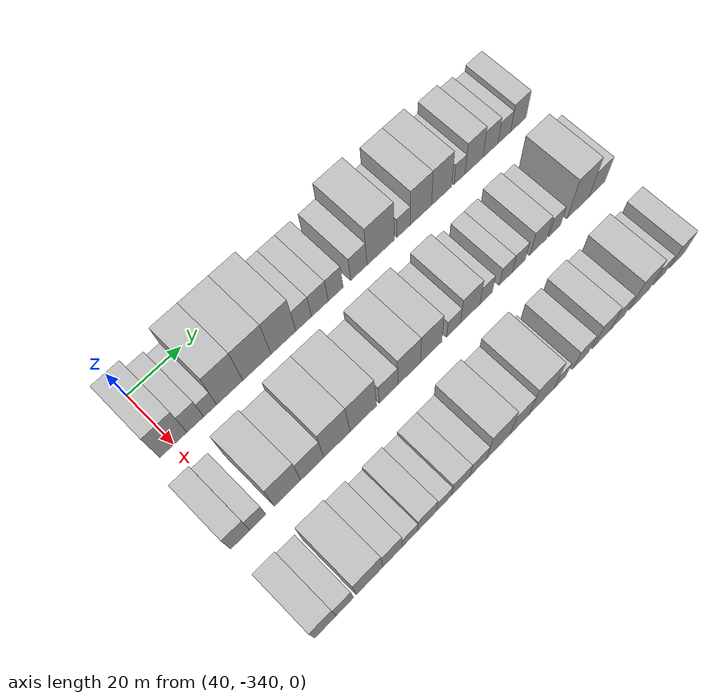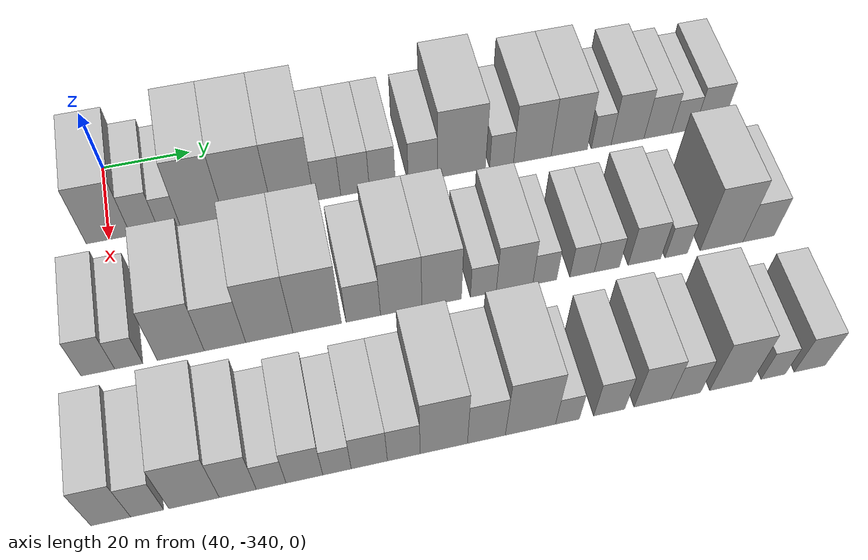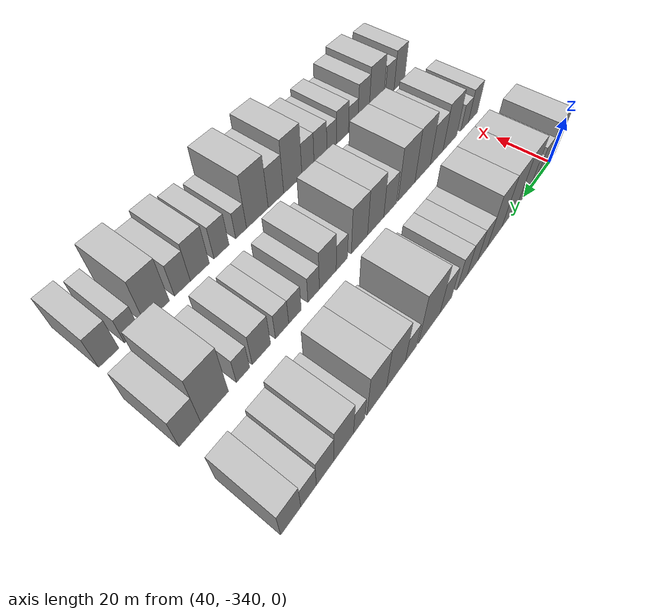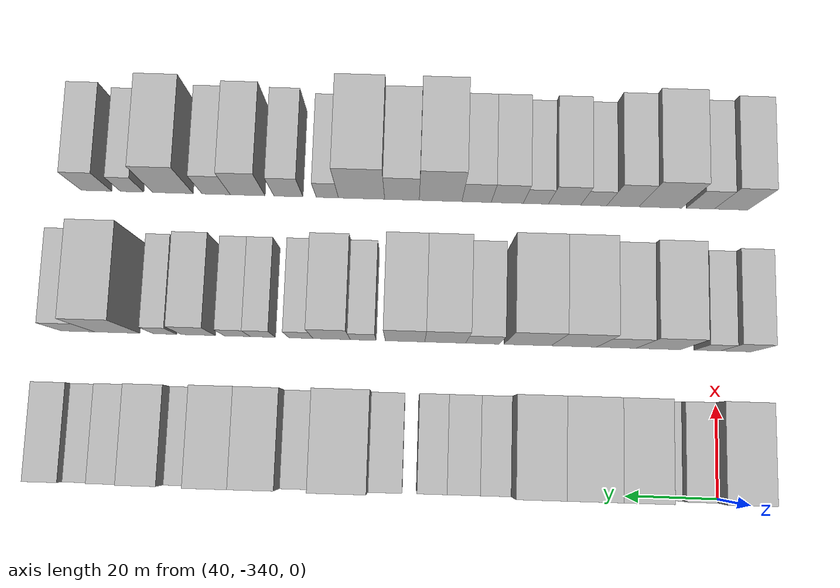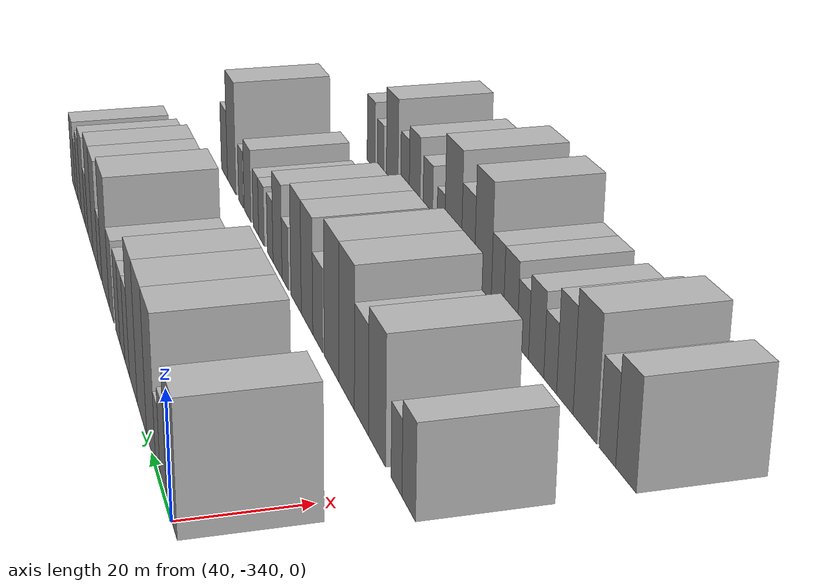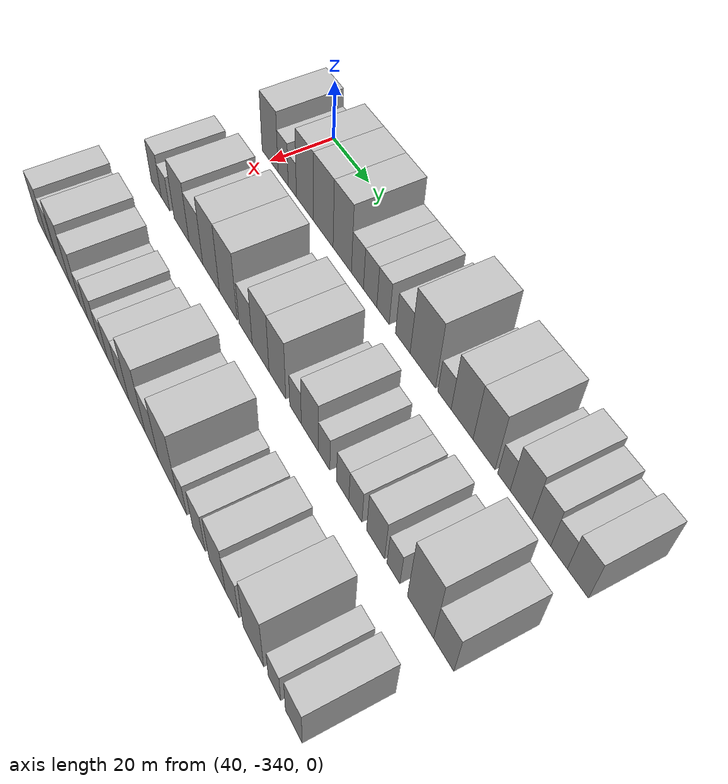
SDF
<sdf version="1.6">
 <world name="default">
  <model name="building_1">
   <static>1</static>
   <pose>50.0000 -340.0986 0 0.000000 0.000000 0.000000</pose>
   <link name="link">
    <pose>0 0 10.50 0 0 0</pose>
    <collision name="collision"><geometry><box><size>20.0000 9.8028 21.0000</size></box></geometry></collision>
    <visual name="visual">
     <cast_shadows>0</cast_shadows>
     <geometry><box><size>20.0000 9.8028 21.0000</size></box></geometry>
     <material>
      <script>
       <uri>model://HANNAS_wall/materials/scripts</uri>
       <uri>model://HANNAS_wall/materials/textures</uri>
       <name>vrc/HANNAS_wall</name>
      </script>
     </material>
    </visual>
   </link>
  </model>
  <model name="building_2">
   <static>1</static>
   <pose>50.0000 -332.1278 0 0.000000 0.000000 0.000000</pose>
   <link name="link">
    <pose>0 0 7.50 0 0 0</pose>
    <collision name="collision"><geometry><box><size>20.0000 6.1390 15.0000</size></box></geometry></collision>
    <visual name="visual">
     <cast_shadows>0</cast_shadows>
     <geometry><box><size>20.0000 6.1390 15.0000</size></box></geometry>
     <material>
      <script>
       <uri>model://HANNAS_wall/materials/scripts</uri>
       <uri>model://HANNAS_wall/materials/textures</uri>
       <name>vrc/HANNAS_wall</name>
      </script>
     </material>
    </visual>
   </link>
  </model>
  <model name="building_3">
   <static>1</static>
   <pose>50.0000 -326.6484 0 0.000000 0.000000 0.000000</pose>
   <link name="link">
    <pose>0 0 6.00 0 0 0</pose>
    <collision name="collision"><geometry><box><size>20.0000 4.8198 12.0000</size></box></geometry></collision>
    <visual name="visual">
     <cast_shadows>0</cast_shadows>
     <geometry><box><size>20.0000 4.8198 12.0000</size></box></geometry>
     <material>
      <script>
       <uri>model://HANNAS_wall/materials/scripts</uri>
       <uri>model://HANNAS_wall/materials/textures</uri>
       <name>vrc/HANNAS_wall</name>
      </script>
     </material>
    </visual>
   </link>
  </model>
  <model name="building_4">
   <static>1</static>
   <pose>50.0000 -319.3556 0 0.000000 0.000000 0.000000</pose>
   <link name="link">
    <pose>0 0 12.00 0 0 0</pose>
    <collision name="collision"><geometry><box><size>20.0000 9.7657 24.0000</size></box></geometry></collision>
    <visual name="visual">
     <cast_shadows>0</cast_shadows>
     <geometry><box><size>20.0000 9.7657 24.0000</size></box></geometry>
     <material>
      <script>
       <uri>model://HANNAS_wall/materials/scripts</uri>
       <uri>model://HANNAS_wall/materials/textures</uri>
       <name>vrc/HANNAS_wall</name>
      </script>
     </material>
    </visual>
   </link>
  </model>
  <model name="building_5">
   <static>1</static>
   <pose>50.0000 -309.0493 0 0.000000 0.000000 0.000000</pose>
   <link name="link">
    <pose>0 0 12.00 0 0 0</pose>
    <collision name="collision"><geometry><box><size>20.0000 10.8469 24.0000</size></box></geometry></collision>
    <visual name="visual">
     <cast_shadows>0</cast_shadows>
     <geometry><box><size>20.0000 10.8469 24.0000</size></box></geometry>
     <material>
      <script>
       <uri>model://HANNAS_wall/materials/scripts</uri>
       <uri>model://HANNAS_wall/materials/textures</uri>
       <name>vrc/HANNAS_wall</name>
      </script>
     </material>
    </visual>
   </link>
  </model>
  <model name="building_6">
   <static>1</static>
   <pose>50.0000 -298.7794 0 0.000000 0.000000 0.000000</pose>
   <link name="link">
    <pose>0 0 12.00 0 0 0</pose>
    <collision name="collision"><geometry><box><size>20.0000 9.6930 24.0000</size></box></geometry></collision>
    <visual name="visual">
     <cast_shadows>0</cast_shadows>
     <geometry><box><size>20.0000 9.6930 24.0000</size></box></geometry>
     <material>
      <script>
       <uri>model://HANNAS_wall/materials/scripts</uri>
       <uri>model://HANNAS_wall/materials/textures</uri>
       <name>vrc/HANNAS_wall</name>
      </script>
     </material>
    </visual>
   </link>
  </model>
  <model name="building_7">
   <static>1</static>
   <pose>50.0000 -290.8501 0 0.000000 0.000000 0.000000</pose>
   <link name="link">
    <pose>0 0 7.50 0 0 0</pose>
    <collision name="collision"><geometry><box><size>20.0000 6.1656 15.0000</size></box></geometry></collision>
    <visual name="visual">
     <cast_shadows>0</cast_shadows>
     <geometry><box><size>20.0000 6.1656 15.0000</size></box></geometry>
     <material>
      <script>
       <uri>model://HANNAS_wall/materials/scripts</uri>
       <uri>model://HANNAS_wall/materials/textures</uri>
       <name>vrc/HANNAS_wall</name>
      </script>
     </material>
    </visual>
   </link>
  </model>
  <model name="building_8">
   <static>1</static>
   <pose>50.0000 -284.4406 0 0.000000 0.000000 0.000000</pose>
   <link name="link">
    <pose>0 0 7.50 0 0 0</pose>
    <collision name="collision"><geometry><box><size>20.0000 6.6534 15.0000</size></box></geometry></collision>
    <visual name="visual">
     <cast_shadows>0</cast_shadows>
     <geometry><box><size>20.0000 6.6534 15.0000</size></box></geometry>
     <material>
      <script>
       <uri>model://HANNAS_wall/materials/scripts</uri>
       <uri>model://HANNAS_wall/materials/textures</uri>
       <name>vrc/HANNAS_wall</name>
      </script>
     </material>
    </visual>
   </link>
  </model>
  <model name="building_9">
   <static>1</static>
   <pose>50.0000 -278.0983 0 0.000000 0.000000 0.000000</pose>
   <link name="link">
    <pose>0 0 7.50 0 0 0</pose>
    <collision name="collision"><geometry><box><size>20.0000 6.0312 15.0000</size></box></geometry></collision>
    <visual name="visual">
     <cast_shadows>0</cast_shadows>
     <geometry><box><size>20.0000 6.0312 15.0000</size></box></geometry>
     <material>
      <script>
       <uri>model://HANNAS_wall/materials/scripts</uri>
       <uri>model://HANNAS_wall/materials/textures</uri>
       <name>vrc/HANNAS_wall</name>
      </script>
     </material>
    </visual>
   </link>
  </model>
  <model name="building_10">
   <static>1</static>
   <pose>50.0000 -268.6760 0 0.000000 0.000000 0.000000</pose>
   <link name="link">
    <pose>0 0 7.50 0 0 0</pose>
    <collision name="collision"><geometry><box><size>20.0000 6.8134 15.0000</size></box></geometry></collision>
    <visual name="visual">
     <cast_shadows>0</cast_shadows>
     <geometry><box><size>20.0000 6.8134 15.0000</size></box></geometry>
     <material>
      <script>
       <uri>model://HANNAS_wall/materials/scripts</uri>
       <uri>model://HANNAS_wall/materials/textures</uri>
       <name>vrc/HANNAS_wall</name>
      </script>
     </material>
    </visual>
   </link>
  </model>
  <model name="building_11">
   <static>1</static>
   <pose>50.0000 -259.5664 0 0.000000 0.000000 0.000000</pose>
   <link name="link">
    <pose>0 0 12.00 0 0 0</pose>
    <collision name="collision"><geometry><box><size>20.0000 11.4057 24.0000</size></box></geometry></collision>
    <visual name="visual">
     <cast_shadows>0</cast_shadows>
     <geometry><box><size>20.0000 11.4057 24.0000</size></box></geometry>
     <material>
      <script>
       <uri>model://HANNAS_wall/materials/scripts</uri>
       <uri>model://HANNAS_wall/materials/textures</uri>
       <name>vrc/HANNAS_wall</name>
      </script>
     </material>
    </visual>
   </link>
  </model>
  <model name="building_12">
   <static>1</static>
   <pose>50.0000 -250.0092 0 0.000000 0.000000 0.000000</pose>
   <link name="link">
    <pose>0 0 6.00 0 0 0</pose>
    <collision name="collision"><geometry><box><size>20.0000 5.7088 12.0000</size></box></geometry></collision>
    <visual name="visual">
     <cast_shadows>0</cast_shadows>
     <geometry><box><size>20.0000 5.7088 12.0000</size></box></geometry>
     <material>
      <script>
       <uri>model://HANNAS_wall/materials/scripts</uri>
       <uri>model://HANNAS_wall/materials/textures</uri>
       <name>vrc/HANNAS_wall</name>
      </script>
     </material>
    </visual>
   </link>
  </model>
  <model name="building_13">
   <static>1</static>
   <pose>50.0000 -242.6174 0 0.000000 0.000000 0.000000</pose>
   <link name="link">
    <pose>0 0 10.50 0 0 0</pose>
    <collision name="collision"><geometry><box><size>20.0000 9.0748 21.0000</size></box></geometry></collision>
    <visual name="visual">
     <cast_shadows>0</cast_shadows>
     <geometry><box><size>20.0000 9.0748 21.0000</size></box></geometry>
     <material>
      <script>
       <uri>model://HANNAS_wall/materials/scripts</uri>
       <uri>model://HANNAS_wall/materials/textures</uri>
       <name>vrc/HANNAS_wall</name>
      </script>
     </material>
    </visual>
   </link>
  </model>
  <model name="building_14">
   <static>1</static>
   <pose>50.0000 -233.6881 0 0.000000 0.000000 0.000000</pose>
   <link name="link">
    <pose>0 0 10.50 0 0 0</pose>
    <collision name="collision"><geometry><box><size>20.0000 8.7838 21.0000</size></box></geometry></collision>
    <visual name="visual">
     <cast_shadows>0</cast_shadows>
     <geometry><box><size>20.0000 8.7838 21.0000</size></box></geometry>
     <material>
      <script>
       <uri>model://HANNAS_wall/materials/scripts</uri>
       <uri>model://HANNAS_wall/materials/textures</uri>
       <name>vrc/HANNAS_wall</name>
      </script>
     </material>
    </visual>
   </link>
  </model>
  <model name="building_15">
   <static>1</static>
   <pose>50.0000 -225.8826 0 0.000000 0.000000 0.000000</pose>
   <link name="link">
    <pose>0 0 6.00 0 0 0</pose>
    <collision name="collision"><geometry><box><size>20.0000 4.8271 12.0000</size></box></geometry></collision>
    <visual name="visual">
     <cast_shadows>0</cast_shadows>
     <geometry><box><size>20.0000 4.8271 12.0000</size></box></geometry>
     <material>
      <script>
       <uri>model://HANNAS_wall/materials/scripts</uri>
       <uri>model://HANNAS_wall/materials/textures</uri>
       <name>vrc/HANNAS_wall</name>
      </script>
     </material>
    </visual>
   </link>
  </model>
  <model name="building_16">
   <static>1</static>
   <pose>50.0000 -219.4341 0 0.000000 0.000000 0.000000</pose>
   <link name="link">
    <pose>0 0 9.00 0 0 0</pose>
    <collision name="collision"><geometry><box><size>20.0000 8.0699 18.0000</size></box></geometry></collision>
    <visual name="visual">
     <cast_shadows>0</cast_shadows>
     <geometry><box><size>20.0000 8.0699 18.0000</size></box></geometry>
     <material>
      <script>
       <uri>model://HANNAS_wall/materials/scripts</uri>
       <uri>model://HANNAS_wall/materials/textures</uri>
       <name>vrc/HANNAS_wall</name>
      </script>
     </material>
    </visual>
   </link>
  </model>
  <model name="building_17">
   <static>1</static>
   <pose>50.0000 -212.0149 0 0.000000 0.000000 0.000000</pose>
   <link name="link">
    <pose>0 0 7.50 0 0 0</pose>
    <collision name="collision"><geometry><box><size>20.0000 6.7684 15.0000</size></box></geometry></collision>
    <visual name="visual">
     <cast_shadows>0</cast_shadows>
     <geometry><box><size>20.0000 6.7684 15.0000</size></box></geometry>
     <material>
      <script>
       <uri>model://HANNAS_wall/materials/scripts</uri>
       <uri>model://HANNAS_wall/materials/textures</uri>
       <name>vrc/HANNAS_wall</name>
      </script>
     </material>
    </visual>
   </link>
  </model>
  <model name="building_18">
   <static>1</static>
   <pose>50.0000 -205.7448 0 0.000000 0.000000 0.000000</pose>
   <link name="link">
    <pose>0 0 6.00 0 0 0</pose>
    <collision name="collision"><geometry><box><size>20.0000 5.7718 12.0000</size></box></geometry></collision>
    <visual name="visual">
     <cast_shadows>0</cast_shadows>
     <geometry><box><size>20.0000 5.7718 12.0000</size></box></geometry>
     <material>
      <script>
       <uri>model://HANNAS_wall/materials/scripts</uri>
       <uri>model://HANNAS_wall/materials/textures</uri>
       <name>vrc/HANNAS_wall</name>
      </script>
     </material>
    </visual>
   </link>
  </model>
  <model name="building_19">
   <static>1</static>
   <pose>50.0000 -199.2922 0 0.000000 0.000000 0.000000</pose>
   <link name="link">
    <pose>0 0 7.50 0 0 0</pose>
    <collision name="collision"><geometry><box><size>20.0000 7.1336 15.0000</size></box></geometry></collision>
    <visual name="visual">
     <cast_shadows>0</cast_shadows>
     <geometry><box><size>20.0000 7.1336 15.0000</size></box></geometry>
     <material>
      <script>
       <uri>model://HANNAS_wall/materials/scripts</uri>
       <uri>model://HANNAS_wall/materials/textures</uri>
       <name>vrc/HANNAS_wall</name>
      </script>
     </material>
    </visual>
   </link>
  </model>
  <model name="building_80">
   <static>1</static>
   <pose>82.0000 -344.5440 0 0.000000 0.000000 0.000000</pose>
   <link name="link">
    <pose>0 0 7.50 0 0 0</pose>
    <collision name="collision"><geometry><box><size>20.0000 6.9119 15.0000</size></box></geometry></collision>
    <visual name="visual">
     <cast_shadows>0</cast_shadows>
     <geometry><box><size>20.0000 6.9119 15.0000</size></box></geometry>
     <material>
      <script>
       <uri>model://HANNAS_wall/materials/scripts</uri>
       <uri>model://HANNAS_wall/materials/textures</uri>
       <name>vrc/HANNAS_wall</name>
      </script>
     </material>
    </visual>
   </link>
  </model>
  <model name="building_81">
   <static>1</static>
   <pose>82.0000 -338.2089 0 0.000000 0.000000 0.000000</pose>
   <link name="link">
    <pose>0 0 6.00 0 0 0</pose>
    <collision name="collision"><geometry><box><size>20.0000 5.7583 12.0000</size></box></geometry></collision>
    <visual name="visual">
     <cast_shadows>0</cast_shadows>
     <geometry><box><size>20.0000 5.7583 12.0000</size></box></geometry>
     <material>
      <script>
       <uri>model://HANNAS_wall/materials/scripts</uri>
       <uri>model://HANNAS_wall/materials/textures</uri>
       <name>vrc/HANNAS_wall</name>
      </script>
     </material>
    </visual>
   </link>
  </model>
  <model name="building_82">
   <static>1</static>
   <pose>82.0000 -327.4488 0 0.000000 0.000000 0.000000</pose>
   <link name="link">
    <pose>0 0 10.50 0 0 0</pose>
    <collision name="collision"><geometry><box><size>20.0000 9.7619 21.0000</size></box></geometry></collision>
    <visual name="visual">
     <cast_shadows>0</cast_shadows>
     <geometry><box><size>20.0000 9.7619 21.0000</size></box></geometry>
     <material>
      <script>
       <uri>model://HANNAS_wall/materials/scripts</uri>
       <uri>model://HANNAS_wall/materials/textures</uri>
       <name>vrc/HANNAS_wall</name>
      </script>
     </material>
    </visual>
   </link>
  </model>
  <model name="building_83">
   <static>1</static>
   <pose>82.0000 -318.2246 0 0.000000 0.000000 0.000000</pose>
   <link name="link">
    <pose>0 0 9.00 0 0 0</pose>
    <collision name="collision"><geometry><box><size>20.0000 8.6865 18.0000</size></box></geometry></collision>
    <visual name="visual">
     <cast_shadows>0</cast_shadows>
     <geometry><box><size>20.0000 8.6865 18.0000</size></box></geometry>
     <material>
      <script>
       <uri>model://HANNAS_wall/materials/scripts</uri>
       <uri>model://HANNAS_wall/materials/textures</uri>
       <name>vrc/HANNAS_wall</name>
      </script>
     </material>
    </visual>
   </link>
  </model>
  <model name="building_84">
   <static>1</static>
   <pose>82.0000 -308.8712 0 0.000000 0.000000 0.000000</pose>
   <link name="link">
    <pose>0 0 12.00 0 0 0</pose>
    <collision name="collision"><geometry><box><size>20.0000 10.0203 24.0000</size></box></geometry></collision>
    <visual name="visual">
     <cast_shadows>0</cast_shadows>
     <geometry><box><size>20.0000 10.0203 24.0000</size></box></geometry>
     <material>
      <script>
       <uri>model://HANNAS_wall/materials/scripts</uri>
       <uri>model://HANNAS_wall/materials/textures</uri>
       <name>vrc/HANNAS_wall</name>
      </script>
     </material>
    </visual>
   </link>
  </model>
  <model name="building_85">
   <static>1</static>
   <pose>82.0000 -298.6765 0 0.000000 0.000000 0.000000</pose>
   <link name="link">
    <pose>0 0 12.00 0 0 0</pose>
    <collision name="collision"><geometry><box><size>20.0000 10.3690 24.0000</size></box></geometry></collision>
    <visual name="visual">
     <cast_shadows>0</cast_shadows>
     <geometry><box><size>20.0000 10.3690 24.0000</size></box></geometry>
     <material>
      <script>
       <uri>model://HANNAS_wall/materials/scripts</uri>
       <uri>model://HANNAS_wall/materials/textures</uri>
       <name>vrc/HANNAS_wall</name>
      </script>
     </material>
    </visual>
   </link>
  </model>
  <model name="building_86">
   <static>1</static>
   <pose>82.0000 -288.7683 0 0.000000 0.000000 0.000000</pose>
   <link name="link">
    <pose>0 0 7.50 0 0 0</pose>
    <collision name="collision"><geometry><box><size>20.0000 7.4475 15.0000</size></box></geometry></collision>
    <visual name="visual">
     <cast_shadows>0</cast_shadows>
     <geometry><box><size>20.0000 7.4475 15.0000</size></box></geometry>
     <material>
      <script>
       <uri>model://HANNAS_wall/materials/scripts</uri>
       <uri>model://HANNAS_wall/materials/textures</uri>
       <name>vrc/HANNAS_wall</name>
      </script>
     </material>
    </visual>
   </link>
  </model>
  <model name="building_87">
   <static>1</static>
   <pose>82.0000 -280.5340 0 0.000000 0.000000 0.000000</pose>
   <link name="link">
    <pose>0 0 10.50 0 0 0</pose>
    <collision name="collision"><geometry><box><size>20.0000 9.0212 21.0000</size></box></geometry></collision>
    <visual name="visual">
     <cast_shadows>0</cast_shadows>
     <geometry><box><size>20.0000 9.0212 21.0000</size></box></geometry>
     <material>
      <script>
       <uri>model://HANNAS_wall/materials/scripts</uri>
       <uri>model://HANNAS_wall/materials/textures</uri>
       <name>vrc/HANNAS_wall</name>
      </script>
     </material>
    </visual>
   </link>
  </model>
  <model name="building_88">
   <static>1</static>
   <pose>82.0000 -271.6885 0 0.000000 0.000000 0.000000</pose>
   <link name="link">
    <pose>0 0 10.50 0 0 0</pose>
    <collision name="collision"><geometry><box><size>20.0000 8.6698 21.0000</size></box></geometry></collision>
    <visual name="visual">
     <cast_shadows>0</cast_shadows>
     <geometry><box><size>20.0000 8.6698 21.0000</size></box></geometry>
     <material>
      <script>
       <uri>model://HANNAS_wall/materials/scripts</uri>
       <uri>model://HANNAS_wall/materials/textures</uri>
       <name>vrc/HANNAS_wall</name>
      </script>
     </material>
    </visual>
   </link>
  </model>
  <model name="building_89">
   <static>1</static>
   <pose>82.0000 -262.4972 0 0.000000 0.000000 0.000000</pose>
   <link name="link">
    <pose>0 0 6.00 0 0 0</pose>
    <collision name="collision"><geometry><box><size>20.0000 5.7128 12.0000</size></box></geometry></collision>
    <visual name="visual">
     <cast_shadows>0</cast_shadows>
     <geometry><box><size>20.0000 5.7128 12.0000</size></box></geometry>
     <material>
      <script>
       <uri>model://HANNAS_wall/materials/scripts</uri>
       <uri>model://HANNAS_wall/materials/textures</uri>
       <name>vrc/HANNAS_wall</name>
      </script>
     </material>
    </visual>
   </link>
  </model>
  <model name="building_90">
   <static>1</static>
   <pose>82.0000 -255.5551 0 0.000000 0.000000 0.000000</pose>
   <link name="link">
    <pose>0 0 9.00 0 0 0</pose>
    <collision name="collision"><geometry><box><size>20.0000 8.1714 18.0000</size></box></geometry></collision>
    <visual name="visual">
     <cast_shadows>0</cast_shadows>
     <geometry><box><size>20.0000 8.1714 18.0000</size></box></geometry>
     <material>
      <script>
       <uri>model://HANNAS_wall/materials/scripts</uri>
       <uri>model://HANNAS_wall/materials/textures</uri>
       <name>vrc/HANNAS_wall</name>
      </script>
     </material>
    </visual>
   </link>
  </model>
  <model name="building_91">
   <static>1</static>
   <pose>82.0000 -248.7847 0 0.000000 0.000000 0.000000</pose>
   <link name="link">
    <pose>0 0 6.00 0 0 0</pose>
    <collision name="collision"><geometry><box><size>20.0000 5.3695 12.0000</size></box></geometry></collision>
    <visual name="visual">
     <cast_shadows>0</cast_shadows>
     <geometry><box><size>20.0000 5.3695 12.0000</size></box></geometry>
     <material>
      <script>
       <uri>model://HANNAS_wall/materials/scripts</uri>
       <uri>model://HANNAS_wall/materials/textures</uri>
       <name>vrc/HANNAS_wall</name>
      </script>
     </material>
    </visual>
   </link>
  </model>
  <model name="building_92">
   <static>1</static>
   <pose>82.0000 -240.3212 0 0.000000 0.000000 0.000000</pose>
   <link name="link">
    <pose>0 0 6.00 0 0 0</pose>
    <collision name="collision"><geometry><box><size>20.0000 5.5577 12.0000</size></box></geometry></collision>
    <visual name="visual">
     <cast_shadows>0</cast_shadows>
     <geometry><box><size>20.0000 5.5577 12.0000</size></box></geometry>
     <material>
      <script>
       <uri>model://HANNAS_wall/materials/scripts</uri>
       <uri>model://HANNAS_wall/materials/textures</uri>
       <name>vrc/HANNAS_wall</name>
      </script>
     </material>
    </visual>
   </link>
  </model>
  <model name="building_93">
   <static>1</static>
   <pose>82.0000 -234.6851 0 0.000000 0.000000 0.000000</pose>
   <link name="link">
    <pose>0 0 6.00 0 0 0</pose>
    <collision name="collision"><geometry><box><size>20.0000 5.7144 12.0000</size></box></geometry></collision>
    <visual name="visual">
     <cast_shadows>0</cast_shadows>
     <geometry><box><size>20.0000 5.7144 12.0000</size></box></geometry>
     <material>
      <script>
       <uri>model://HANNAS_wall/materials/scripts</uri>
       <uri>model://HANNAS_wall/materials/textures</uri>
       <name>vrc/HANNAS_wall</name>
      </script>
     </material>
    </visual>
   </link>
  </model>
  <model name="building_94">
   <static>1</static>
   <pose>82.0000 -226.0825 0 0.000000 0.000000 0.000000</pose>
   <link name="link">
    <pose>0 0 7.50 0 0 0</pose>
    <collision name="collision"><geometry><box><size>20.0000 7.4907 15.0000</size></box></geometry></collision>
    <visual name="visual">
     <cast_shadows>0</cast_shadows>
     <geometry><box><size>20.0000 7.4907 15.0000</size></box></geometry>
     <material>
      <script>
       <uri>model://HANNAS_wall/materials/scripts</uri>
       <uri>model://HANNAS_wall/materials/textures</uri>
       <name>vrc/HANNAS_wall</name>
      </script>
     </material>
    </visual>
   </link>
  </model>
  <model name="building_95">
   <static>1</static>
   <pose>82.0000 -218.7487 0 0.000000 0.000000 0.000000</pose>
   <link name="link">
    <pose>0 0 6.00 0 0 0</pose>
    <collision name="collision"><geometry><box><size>20.0000 5.1771 12.0000</size></box></geometry></collision>
    <visual name="visual">
     <cast_shadows>0</cast_shadows>
     <geometry><box><size>20.0000 5.1771 12.0000</size></box></geometry>
     <material>
      <script>
       <uri>model://HANNAS_wall/materials/scripts</uri>
       <uri>model://HANNAS_wall/materials/textures</uri>
       <name>vrc/HANNAS_wall</name>
      </script>
     </material>
    </visual>
   </link>
  </model>
  <model name="building_96">
   <static>1</static>
   <pose>82.0000 -208.1568 0 0.000000 0.000000 0.000000</pose>
   <link name="link">
    <pose>0 0 12.00 0 0 0</pose>
    <collision name="collision"><geometry><box><size>20.0000 10.0066 24.0000</size></box></geometry></collision>
    <visual name="visual">
     <cast_shadows>0</cast_shadows>
     <geometry><box><size>20.0000 10.0066 24.0000</size></box></geometry>
     <material>
      <script>
       <uri>model://HANNAS_wall/materials/scripts</uri>
       <uri>model://HANNAS_wall/materials/textures</uri>
       <name>vrc/HANNAS_wall</name>
      </script>
     </material>
    </visual>
   </link>
  </model>
  <model name="building_97">
   <static>1</static>
   <pose>82.0000 -199.4689 0 0.000000 0.000000 0.000000</pose>
   <link name="link">
    <pose>0 0 7.50 0 0 0</pose>
    <collision name="collision"><geometry><box><size>20.0000 7.3693 15.0000</size></box></geometry></collision>
    <visual name="visual">
     <cast_shadows>0</cast_shadows>
     <geometry><box><size>20.0000 7.3693 15.0000</size></box></geometry>
     <material>
      <script>
       <uri>model://HANNAS_wall/materials/scripts</uri>
       <uri>model://HANNAS_wall/materials/textures</uri>
       <name>vrc/HANNAS_wall</name>
      </script>
     </material>
    </visual>
   </link>
  </model>
  <model name="building_152">
   <static>1</static>
   <pose>114.0000 -344.2142 0 0.000000 0.000000 0.000000</pose>
   <link name="link">
    <pose>0 0 9.00 0 0 0</pose>
    <collision name="collision"><geometry><box><size>20.0000 7.5717 18.0000</size></box></geometry></collision>
    <visual name="visual">
     <cast_shadows>0</cast_shadows>
     <geometry><box><size>20.0000 7.5717 18.0000</size></box></geometry>
     <material>
      <script>
       <uri>model://HANNAS_wall/materials/scripts</uri>
       <uri>model://HANNAS_wall/materials/textures</uri>
       <name>vrc/HANNAS_wall</name>
      </script>
     </material>
    </visual>
   </link>
  </model>
  <model name="building_153">
   <static>1</static>
   <pose>114.0000 -337.2788 0 0.000000 0.000000 0.000000</pose>
   <link name="link">
    <pose>0 0 7.50 0 0 0</pose>
    <collision name="collision"><geometry><box><size>20.0000 6.2991 15.0000</size></box></geometry></collision>
    <visual name="visual">
     <cast_shadows>0</cast_shadows>
     <geometry><box><size>20.0000 6.2991 15.0000</size></box></geometry>
     <material>
      <script>
       <uri>model://HANNAS_wall/materials/scripts</uri>
       <uri>model://HANNAS_wall/materials/textures</uri>
       <name>vrc/HANNAS_wall</name>
      </script>
     </material>
    </visual>
   </link>
  </model>
  <model name="building_154">
   <static>1</static>
   <pose>114.0000 -328.2552 0 0.000000 0.000000 0.000000</pose>
   <link name="link">
    <pose>0 0 10.50 0 0 0</pose>
    <collision name="collision"><geometry><box><size>20.0000 9.7479 21.0000</size></box></geometry></collision>
    <visual name="visual">
     <cast_shadows>0</cast_shadows>
     <geometry><box><size>20.0000 9.7479 21.0000</size></box></geometry>
     <material>
      <script>
       <uri>model://HANNAS_wall/materials/scripts</uri>
       <uri>model://HANNAS_wall/materials/textures</uri>
       <name>vrc/HANNAS_wall</name>
      </script>
     </material>
    </visual>
   </link>
  </model>
  <model name="building_155">
   <static>1</static>
   <pose>114.0000 -319.7714 0 0.000000 0.000000 0.000000</pose>
   <link name="link">
    <pose>0 0 9.00 0 0 0</pose>
    <collision name="collision"><geometry><box><size>20.0000 7.2197 18.0000</size></box></geometry></collision>
    <visual name="visual">
     <cast_shadows>0</cast_shadows>
     <geometry><box><size>20.0000 7.2197 18.0000</size></box></geometry>
     <material>
      <script>
       <uri>model://HANNAS_wall/materials/scripts</uri>
       <uri>model://HANNAS_wall/materials/textures</uri>
       <name>vrc/HANNAS_wall</name>
      </script>
     </material>
    </visual>
   </link>
  </model>
  <model name="building_156">
   <static>1</static>
   <pose>114.0000 -313.2444 0 0.000000 0.000000 0.000000</pose>
   <link name="link">
    <pose>0 0 6.00 0 0 0</pose>
    <collision name="collision"><geometry><box><size>20.0000 5.8343 12.0000</size></box></geometry></collision>
    <visual name="visual">
     <cast_shadows>0</cast_shadows>
     <geometry><box><size>20.0000 5.8343 12.0000</size></box></geometry>
     <material>
      <script>
       <uri>model://HANNAS_wall/materials/scripts</uri>
       <uri>model://HANNAS_wall/materials/textures</uri>
       <name>vrc/HANNAS_wall</name>
      </script>
     </material>
    </visual>
   </link>
  </model>
  <model name="building_157">
   <static>1</static>
   <pose>114.0000 -306.6906 0 0.000000 0.000000 0.000000</pose>
   <link name="link">
    <pose>0 0 7.50 0 0 0</pose>
    <collision name="collision"><geometry><box><size>20.0000 7.2733 15.0000</size></box></geometry></collision>
    <visual name="visual">
     <cast_shadows>0</cast_shadows>
     <geometry><box><size>20.0000 7.2733 15.0000</size></box></geometry>
     <material>
      <script>
       <uri>model://HANNAS_wall/materials/scripts</uri>
       <uri>model://HANNAS_wall/materials/textures</uri>
       <name>vrc/HANNAS_wall</name>
      </script>
     </material>
    </visual>
   </link>
  </model>
  <model name="building_158">
   <static>1</static>
   <pose>114.0000 -300.2233 0 0.000000 0.000000 0.000000</pose>
   <link name="link">
    <pose>0 0 6.00 0 0 0</pose>
    <collision name="collision"><geometry><box><size>20.0000 5.6613 12.0000</size></box></geometry></collision>
    <visual name="visual">
     <cast_shadows>0</cast_shadows>
     <geometry><box><size>20.0000 5.6613 12.0000</size></box></geometry>
     <material>
      <script>
       <uri>model://HANNAS_wall/materials/scripts</uri>
       <uri>model://HANNAS_wall/materials/textures</uri>
       <name>vrc/HANNAS_wall</name>
      </script>
     </material>
    </visual>
   </link>
  </model>
  <model name="building_159">
   <static>1</static>
   <pose>114.0000 -293.7693 0 0.000000 0.000000 0.000000</pose>
   <link name="link">
    <pose>0 0 7.50 0 0 0</pose>
    <collision name="collision"><geometry><box><size>20.0000 7.2467 15.0000</size></box></geometry></collision>
    <visual name="visual">
     <cast_shadows>0</cast_shadows>
     <geometry><box><size>20.0000 7.2467 15.0000</size></box></geometry>
     <material>
      <script>
       <uri>model://HANNAS_wall/materials/scripts</uri>
       <uri>model://HANNAS_wall/materials/textures</uri>
       <name>vrc/HANNAS_wall</name>
      </script>
     </material>
    </visual>
   </link>
  </model>
  <model name="building_160">
   <static>1</static>
   <pose>114.0000 -286.8264 0 0.000000 0.000000 0.000000</pose>
   <link name="link">
    <pose>0 0 7.50 0 0 0</pose>
    <collision name="collision"><geometry><box><size>20.0000 6.6391 15.0000</size></box></geometry></collision>
    <visual name="visual">
     <cast_shadows>0</cast_shadows>
     <geometry><box><size>20.0000 6.6391 15.0000</size></box></geometry>
     <material>
      <script>
       <uri>model://HANNAS_wall/materials/scripts</uri>
       <uri>model://HANNAS_wall/materials/textures</uri>
       <name>vrc/HANNAS_wall</name>
      </script>
     </material>
    </visual>
   </link>
  </model>
  <model name="building_161">
   <static>1</static>
   <pose>114.0000 -278.7031 0 0.000000 0.000000 0.000000</pose>
   <link name="link">
    <pose>0 0 12.00 0 0 0</pose>
    <collision name="collision"><geometry><box><size>20.0000 9.6075 24.0000</size></box></geometry></collision>
    <visual name="visual">
     <cast_shadows>0</cast_shadows>
     <geometry><box><size>20.0000 9.6075 24.0000</size></box></geometry>
     <material>
      <script>
       <uri>model://HANNAS_wall/materials/scripts</uri>
       <uri>model://HANNAS_wall/materials/textures</uri>
       <name>vrc/HANNAS_wall</name>
      </script>
     </material>
    </visual>
   </link>
  </model>
  <model name="building_162">
   <static>1</static>
   <pose>114.0000 -270.0003 0 0.000000 0.000000 0.000000</pose>
   <link name="link">
    <pose>0 0 9.00 0 0 0</pose>
    <collision name="collision"><geometry><box><size>20.0000 7.7982 18.0000</size></box></geometry></collision>
    <visual name="visual">
     <cast_shadows>0</cast_shadows>
     <geometry><box><size>20.0000 7.7982 18.0000</size></box></geometry>
     <material>
      <script>
       <uri>model://HANNAS_wall/materials/scripts</uri>
       <uri>model://HANNAS_wall/materials/textures</uri>
       <name>vrc/HANNAS_wall</name>
      </script>
     </material>
    </visual>
   </link>
  </model>
  <model name="building_163">
   <static>1</static>
   <pose>114.0000 -260.8898 0 0.000000 0.000000 0.000000</pose>
   <link name="link">
    <pose>0 0 12.00 0 0 0</pose>
    <collision name="collision"><geometry><box><size>20.0000 10.4228 24.0000</size></box></geometry></collision>
    <visual name="visual">
     <cast_shadows>0</cast_shadows>
     <geometry><box><size>20.0000 10.4228 24.0000</size></box></geometry>
     <material>
      <script>
       <uri>model://HANNAS_wall/materials/scripts</uri>
       <uri>model://HANNAS_wall/materials/textures</uri>
       <name>vrc/HANNAS_wall</name>
      </script>
     </material>
    </visual>
   </link>
  </model>
  <model name="building_164">
   <static>1</static>
   <pose>114.0000 -253.1747 0 0.000000 0.000000 0.000000</pose>
   <link name="link">
    <pose>0 0 6.00 0 0 0</pose>
    <collision name="collision"><geometry><box><size>20.0000 5.0074 12.0000</size></box></geometry></collision>
    <visual name="visual">
     <cast_shadows>0</cast_shadows>
     <geometry><box><size>20.0000 5.0074 12.0000</size></box></geometry>
     <material>
      <script>
       <uri>model://HANNAS_wall/materials/scripts</uri>
       <uri>model://HANNAS_wall/materials/textures</uri>
       <name>vrc/HANNAS_wall</name>
      </script>
     </material>
    </visual>
   </link>
  </model>
  <model name="building_165">
   <static>1</static>
   <pose>114.0000 -244.3845 0 0.000000 0.000000 0.000000</pose>
   <link name="link">
    <pose>0 0 7.50 0 0 0</pose>
    <collision name="collision"><geometry><box><size>20.0000 6.5729 15.0000</size></box></geometry></collision>
    <visual name="visual">
     <cast_shadows>0</cast_shadows>
     <geometry><box><size>20.0000 6.5729 15.0000</size></box></geometry>
     <material>
      <script>
       <uri>model://HANNAS_wall/materials/scripts</uri>
       <uri>model://HANNAS_wall/materials/textures</uri>
       <name>vrc/HANNAS_wall</name>
      </script>
     </material>
    </visual>
   </link>
  </model>
  <model name="building_166">
   <static>1</static>
   <pose>114.0000 -235.1669 0 0.000000 0.000000 0.000000</pose>
   <link name="link">
    <pose>0 0 9.00 0 0 0</pose>
    <collision name="collision"><geometry><box><size>20.0000 7.8623 18.0000</size></box></geometry></collision>
    <visual name="visual">
     <cast_shadows>0</cast_shadows>
     <geometry><box><size>20.0000 7.8623 18.0000</size></box></geometry>
     <material>
      <script>
       <uri>model://HANNAS_wall/materials/scripts</uri>
       <uri>model://HANNAS_wall/materials/textures</uri>
       <name>vrc/HANNAS_wall</name>
      </script>
     </material>
    </visual>
   </link>
  </model>
  <model name="building_167">
   <static>1</static>
   <pose>114.0000 -228.0461 0 0.000000 0.000000 0.000000</pose>
   <link name="link">
    <pose>0 0 7.50 0 0 0</pose>
    <collision name="collision"><geometry><box><size>20.0000 6.3794 15.0000</size></box></geometry></collision>
    <visual name="visual">
     <cast_shadows>0</cast_shadows>
     <geometry><box><size>20.0000 6.3794 15.0000</size></box></geometry>
     <material>
      <script>
       <uri>model://HANNAS_wall/materials/scripts</uri>
       <uri>model://HANNAS_wall/materials/textures</uri>
       <name>vrc/HANNAS_wall</name>
      </script>
     </material>
    </visual>
   </link>
  </model>
  <model name="building_168">
   <static>1</static>
   <pose>114.0000 -218.2627 0 0.000000 0.000000 0.000000</pose>
   <link name="link">
    <pose>0 0 10.50 0 0 0</pose>
    <collision name="collision"><geometry><box><size>20.0000 9.1876 21.0000</size></box></geometry></collision>
    <visual name="visual">
     <cast_shadows>0</cast_shadows>
     <geometry><box><size>20.0000 9.1876 21.0000</size></box></geometry>
     <material>
      <script>
       <uri>model://HANNAS_wall/materials/scripts</uri>
       <uri>model://HANNAS_wall/materials/textures</uri>
       <name>vrc/HANNAS_wall</name>
      </script>
     </material>
    </visual>
   </link>
  </model>
  <model name="building_169">
   <static>1</static>
   <pose>114.0000 -209.0254 0 0.000000 0.000000 0.000000</pose>
   <link name="link">
    <pose>0 0 6.00 0 0 0</pose>
    <collision name="collision"><geometry><box><size>20.0000 5.2869 12.0000</size></box></geometry></collision>
    <visual name="visual">
     <cast_shadows>0</cast_shadows>
     <geometry><box><size>20.0000 5.2869 12.0000</size></box></geometry>
     <material>
      <script>
       <uri>model://HANNAS_wall/materials/scripts</uri>
       <uri>model://HANNAS_wall/materials/textures</uri>
       <name>vrc/HANNAS_wall</name>
      </script>
     </material>
    </visual>
   </link>
  </model>
  <model name="building_170">
   <static>1</static>
   <pose>114.0000 -200.9552 0 0.000000 0.000000 0.000000</pose>
   <link name="link">
    <pose>0 0 7.50 0 0 0</pose>
    <collision name="collision"><geometry><box><size>20.0000 6.8534 15.0000</size></box></geometry></collision>
    <visual name="visual">
     <cast_shadows>0</cast_shadows>
     <geometry><box><size>20.0000 6.8534 15.0000</size></box></geometry>
     <material>
      <script>
       <uri>model://HANNAS_wall/materials/scripts</uri>
       <uri>model://HANNAS_wall/materials/textures</uri>
       <name>vrc/HANNAS_wall</name>
      </script>
     </material>
    </visual>
   </link>
  </model>
 </world>
</sdf>
